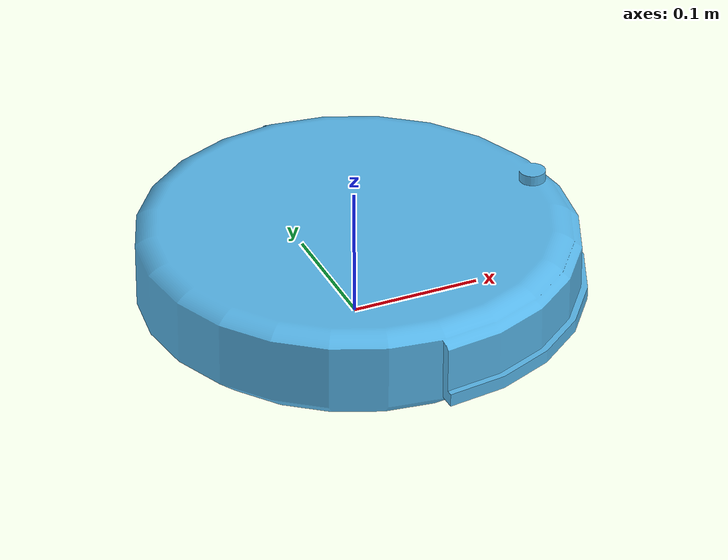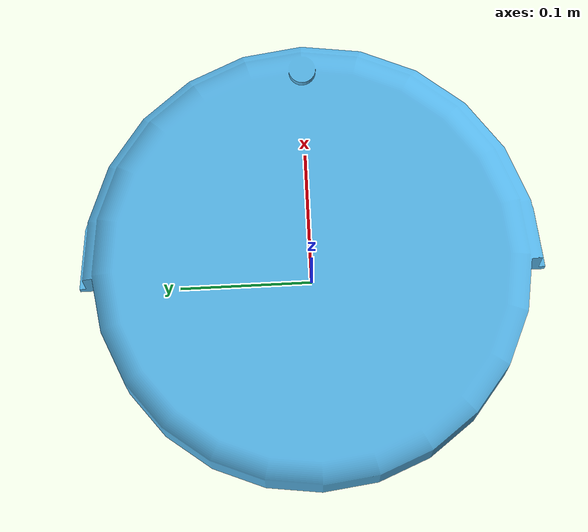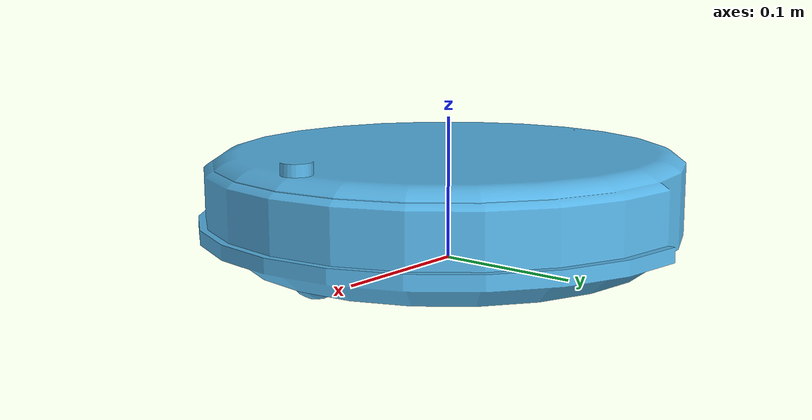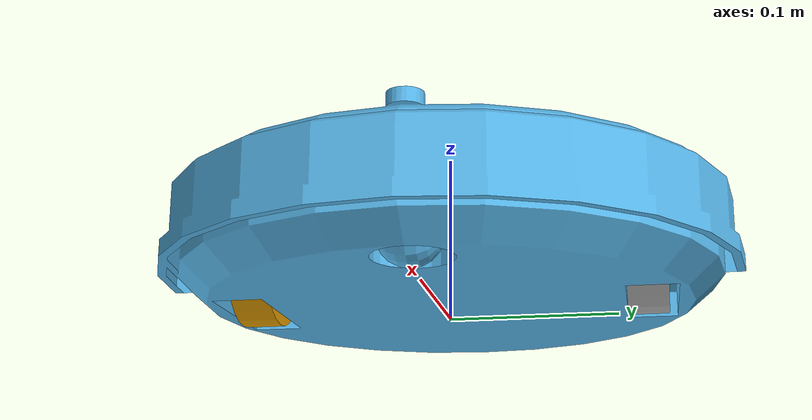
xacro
<?xml version="1.0" ?>
<robot name="create_2" xmlns:xacro="http://ros.org/wiki/xacro">
  <xacro:include filename="$(find create_description)/urdf/create_base.urdf.xacro" />

  <xacro:create_base wheel_separation="0.235" base_diameter="0.3485">
    <mesh filename="package://create_description/meshes/create_2.stl" />
  </xacro:create_base>
</robot>

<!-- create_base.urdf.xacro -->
<robot xmlns:xacro="http://ros.org/wiki/xacro">
  <xacro:property name="PI" value="3.1415926535897931" />

  <material name="Green">
    <color rgba="0 1 0 1"/>
  </material>

  <xacro:macro name="create_wheel" params="prefix y_offset wheel_radius wheel_width">
    <link name="${prefix}_wheel_link">
    <inertial>
      <origin xyz="0 0 0" />
      <mass value="0.01" />
      <inertia ixx="0.001" ixy="0.0" ixz="0.0" iyy="0.001" iyz="0.0" izz="0.001" />
    </inertial>

    <visual>
      <origin xyz="0 0 0" rpy="0 ${PI/2} ${PI/2}" />
      <geometry>
        <cylinder radius="${wheel_radius}" length="${wheel_width}" />
      </geometry>
    </visual>

    <collision>
      <origin xyz="0 0 0" rpy="0 ${PI/2} ${PI/2}" />
      <geometry>
        <cylinder radius="${wheel_radius}" length="${wheel_width}" />
      </geometry>
    </collision>
    </link>

   <joint name="${prefix}_wheel_joint" type="continuous">
      <origin xyz="0 ${y_offset} 0.019" rpy="0 0 0" />
      <parent link="base_link" />
      <child link="${prefix}_wheel_link" />
      <axis xyz="0 1 0" />
    </joint>
  </xacro:macro>

  <xacro:macro name="create_base" params="diffdrive_update_rate:=40 wheel_separation wheel_radius:=0.036 wheel_width:=0.024 wheel_torque:=1.0 wheel_accel:=1.8 mass_kg:=3.5 base_diameter *mesh">
    <xacro:include filename="$(find create_description)/urdf/create_base_gazebo.urdf.xacro" />

    <link name="base_footprint">
    <visual>
      <origin xyz="0 0 0" rpy="0 0 0" />
      <geometry>
        <box size="0.001 0.001 0.001" />
      </geometry>
      <material name="Green" />
    </visual>

    <collision>
      <origin xyz="0 0 0.017" rpy="0 0 0" />
      <geometry>
        <box size="0.001 0.001 0.001" />
      </geometry>
    </collision>
    </link>

    <link name="base_link">
    <inertial>
      <mass value="2" />
      <origin xyz="0 0 0.0" />
      <inertia ixx="0.024898546" ixy="0.0" ixz="0.0" iyy="0.024898546" iyz="0.0" izz="0.047614879" />
    </inertial>

    <visual>
      <origin xyz=" 0 0 0.0201" rpy="0 0 0" />
      <geometry>
        <xacro:insert_block name="mesh" />
      </geometry>
    </visual>

    <collision>
      <origin xyz="0.0 0.0 0.0201" rpy="0 0 0" />
      <geometry>
        <cylinder length="0.0611632" radius="0.16495" />
      </geometry>
    </collision>
    </link>

    <link name="wall_sensor_link">
    <inertial>
      <mass value="0.01" />
      <origin xyz="0 0 0" />
      <inertia ixx="0.001" ixy="0.0" ixz="0.0" iyy="0.001" iyz="0.0" izz="0.001" />
    </inertial>
    </link>

    <link name="left_cliff_sensor_link">
    <inertial>
      <mass value="0.01" />
      <origin xyz="0 0 0" />
      <inertia ixx="0.001" ixy="0.0" ixz="0.0" iyy="0.001" iyz="0.0" izz="0.001" />
    </inertial>
    </link>

    <link name="right_cliff_sensor_link">
    <inertial>
      <mass value="0.01" />
      <origin xyz="0 0 0" />
      <inertia ixx="0.001" ixy="0.0" ixz="0.0" iyy="0.001" iyz="0.0" izz="0.001" />
    </inertial>
    </link>

    <link name="leftfront_cliff_sensor_link">
    <inertial>
      <mass value="0.01" />
      <origin xyz="0 0 0" />
      <inertia ixx="0.001" ixy="0.0" ixz="0.0" iyy="0.001" iyz="0.0" izz="0.001" />
    </inertial>
    </link>

    <link name="rightfront_cliff_sensor_link">
    <inertial>
      <mass value="0.01" />
      <origin xyz="0 0 0" />
      <inertia ixx="0.001" ixy="0.0" ixz="0.0" iyy="0.001" iyz="0.0" izz="0.001" />
    </inertial>
    </link>

    <joint name="base_footprint_joint" type="fixed">
      <origin xyz="0 0 0.017" rpy="0 0 0" />
      <parent link="base_footprint" />
      <child link="base_link" />
    </joint>

    <joint name="base_wall_sensor_joint" type="fixed">
      <origin xyz="0.09 -0.120 0.042" rpy="0 0 -1.0" />
      <parent link="base_link" />
      <child link="wall_sensor_link" />
    </joint>

    <joint name="base_left_cliff_sensor_joint" type="fixed">
      <origin xyz="0.07 0.14 0.01" rpy="0 ${PI/2} 0" />
      <parent link="base_link" />
      <child link="left_cliff_sensor_link" />
    </joint>

    <joint name="base_right_cliff_sensor_joint" type="fixed">
      <origin xyz="0.07 -0.14 0.01" rpy="0 ${PI/2} 0" />
      <parent link="base_link" />
      <child link="right_cliff_sensor_link" />
    </joint>

    <joint name="base_leftfront_cliff_sensor_joint" type="fixed">
      <origin xyz="0.15 0.04 0.01" rpy="0 ${PI/2} 0" />
      <parent link="base_link" />
      <child link="leftfront_cliff_sensor_link" />
    </joint>

    <joint name="base_rightfront_cliff_sensor_joint" type="fixed">
      <origin xyz="0.15 -0.04 0.01" rpy="0 ${PI/2} 0" />
      <parent link="base_link" />
      <child link="rightfront_cliff_sensor_link" />
    </joint>

    <xacro:create_wheel prefix="left" y_offset="${wheel_separation / 2}" wheel_radius="${wheel_radius}" wheel_width="${wheel_width}"/>
    <xacro:create_wheel prefix="right" y_offset="${wheel_separation / -2}" wheel_radius="${wheel_radius}" wheel_width="${wheel_width}"/>

    <link name="front_wheel_link">
    <inertial>
      <origin xyz="0 0 0" />
      <mass value="0.01" />
      <inertia ixx="0.001" ixy="0.0" ixz="0.0" iyy="0.001" iyz="0.0" izz="0.001" />
    </inertial>

    <visual>
      <origin xyz="0 0 0" rpy="0 ${PI/2} ${PI/2}" />
      <geometry>
        <sphere radius="0.018" />
      </geometry>
    </visual>

    <collision>
      <origin xyz="0 0 0" rpy="0 ${PI/2} ${PI/2}" />
      <geometry>
        <sphere radius="0.018" />
      </geometry>
    </collision>
    </link>

    <link name="front_turn_link">
    <inertial>
      <origin xyz="0 0 0" />
      <mass value="0.01" />
      <inertia ixx="0.001" ixy="0.0" ixz="0.0" iyy="0.001" iyz="0.0" izz="0.001" />
    </inertial>
    </link>

    <joint name="front_castor_joint" type="continuous">
      <origin xyz="0.13 0 0.0" rpy="0 0 0" />
      <parent link="base_link" />
      <child link="front_turn_link" />
      <axis xyz="1 0 0" />
    </joint>

    <joint name="front_wheel_joint" type="continuous">
      <origin xyz="0 0 0.0" rpy="0 0 0" />
      <parent link="front_turn_link" />
      <child link="front_wheel_link" />
      <axis xyz="0 1 0" />
    </joint>

    <joint name="gyro_joint" type="fixed">
      <axis xyz="0 1 0" />
      <origin xyz="0 0 0.04" rpy="0 0 0" />
      <parent link="base_link" />
      <child link="gyro_link" />
    </joint>
    <link name="gyro_link">
    <inertial>
      <mass value="0.001" />
      <origin xyz="0 0 0" rpy="0 0 0" />
      <inertia ixx="0.0001" ixy="0" ixz="0" iyy="0.000001" iyz="0" izz="0.0001" />
    </inertial>
    </link>
  </xacro:macro>
</robot>
